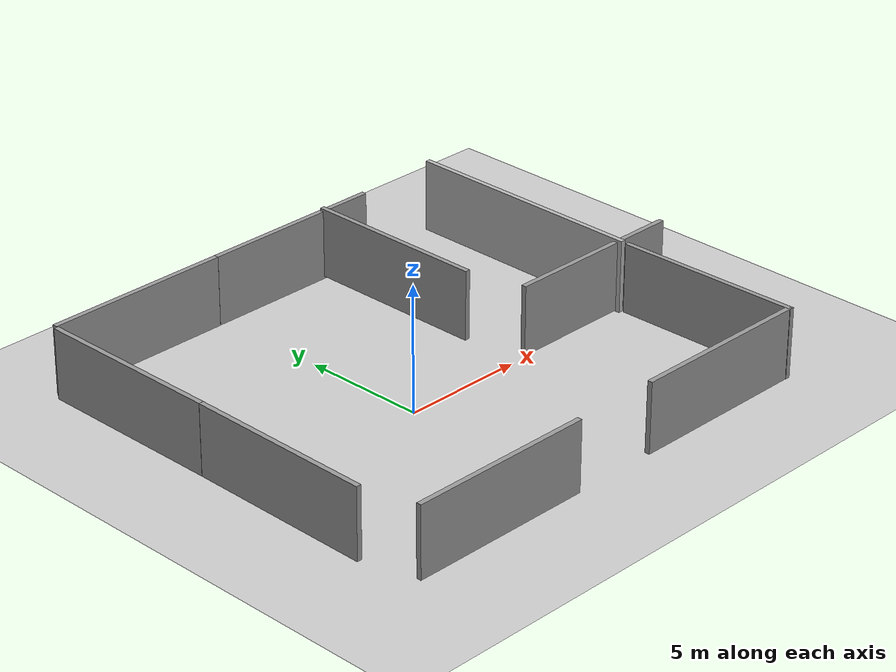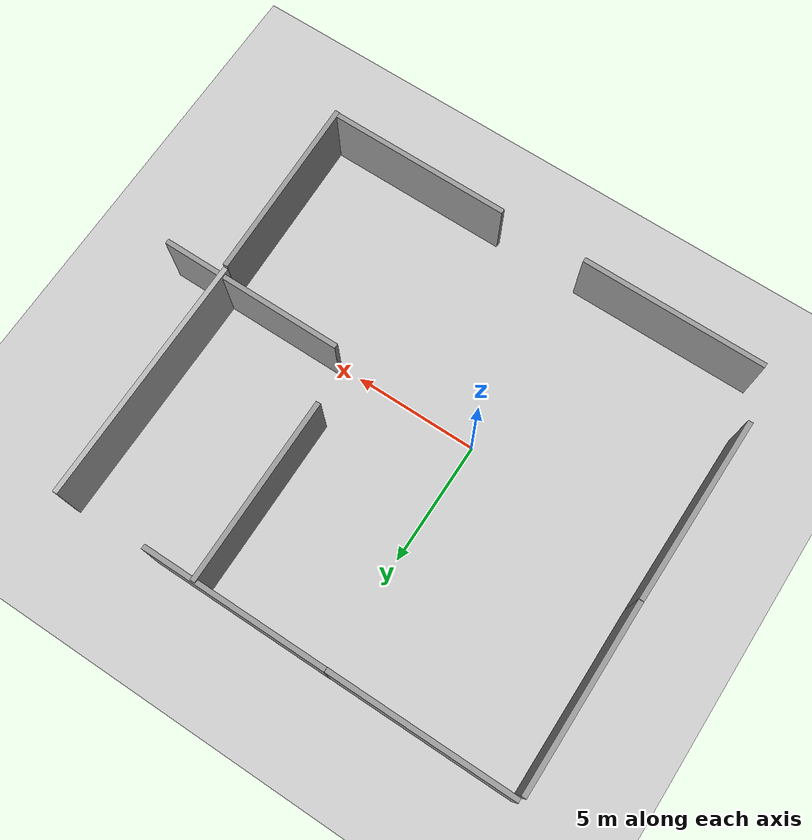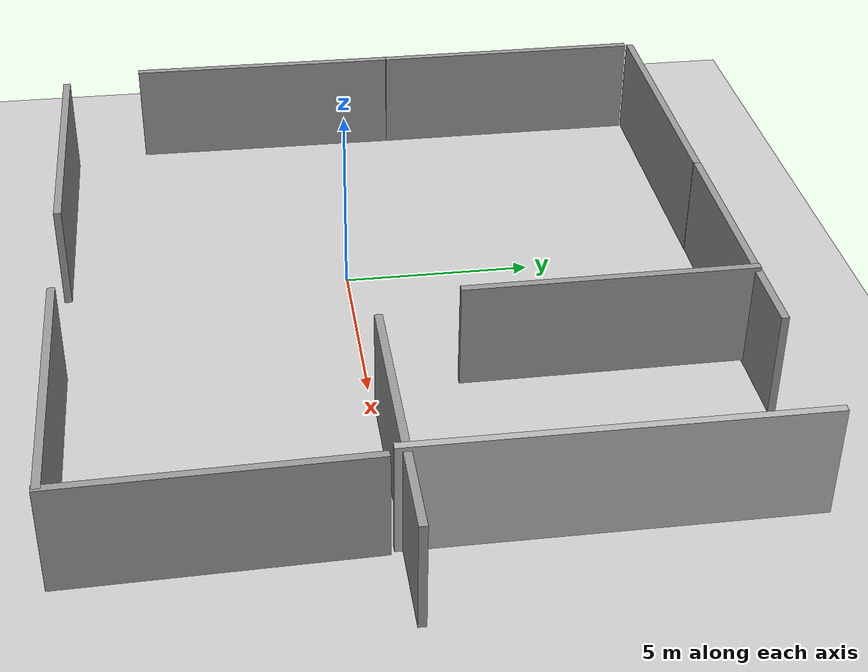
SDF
<sdf version="1.9">
 <world name="empty">
  <physics name="1ms" type="ignored">
   <max_step_size>0.001</max_step_size>
   <real_time_factor>1</real_time_factor>
   <real_time_update_rate>1000</real_time_update_rate>
  </physics>
  <plugin name="gz::sim::systems::Physics" filename="ignition-gazebo-physics-system"/>
  <plugin name="gz::sim::systems::UserCommands" filename="ignition-gazebo-user-commands-system"/>
  <plugin name="gz::sim::systems::SceneBroadcaster" filename="ignition-gazebo-scene-broadcaster-system"/>
  <plugin name="gz::sim::systems::Contact" filename="ignition-gazebo-contact-system"/>
  <gravity>0 0 -9.8</gravity>
  <magnetic_field>6e-06 2.3e-05 -4.2e-05</magnetic_field>
  <atmosphere type="adiabatic"/>
  <scene><ambient>0.4 0.4 0.4 1</ambient><background>0.7 0.7 0.7 1</background><shadows>true</shadows></scene>
  <model name="ground_plane">
   <static>true</static>
   <link name="link">
    <collision name="collision">
     <geometry><plane><normal>0 0 1</normal><size>100 100</size></plane></geometry>
    </collision>
    <visual name="visual">
     <geometry><plane><normal>0 0 1</normal><size>100 100</size></plane></geometry>
     <material>
      <ambient>0.8 0.8 0.8 1</ambient>
      <diffuse>0.8 0.8 0.8 1</diffuse>
      <specular>0.8 0.8 0.8 1</specular>
     </material>
    </visual>
    <inertial>
     <mass>1</mass>
     <inertia><ixx>1</ixx><ixy>0</ixy><ixz>0</ixz><iyy>1</iyy><iyz>0</iyz><izz>1</izz></inertia>
    </inertial>
   </link>
  </model>
  <model name="grey_wall">
   <static>true</static>
   <link name="link">
    <pose>0 0 1.4 0 -0 0</pose>
    <collision name="collision"><geometry><box><size>7.5 0.2 2.8</size></box></geometry></collision>
    <visual name="visual">
     <cast_shadows>false</cast_shadows>
     <geometry><box><size>7.5 0.2 2.8</size></box></geometry>
     <material>
      <script>
       <uri>https://fuel.gazebosim.org/1.0/openrobotics/models/grey wall/3/files/materials/scripts</uri>
       <uri>https://fuel.gazebosim.org/1.0/openrobotics/models/grey wall/3/files/materials/textures</uri>
       <name>vrc/grey_wall</name>
      </script>
     </material>
    </visual>
    <inertial>
     <mass>1</mass>
     <inertia><ixx>1</ixx><ixy>0</ixy><ixz>0</ixz><iyy>1</iyy><iyz>0</iyz><izz>1</izz></inertia>
    </inertial>
   </link>
   <pose>-4.10767 9.71465 0 0 -0 0</pose>
  </model>
  <model name="grey_wall_0">
   <static>true</static>
   <link name="link">
    <pose>0 0 1.4 0 -0 0</pose>
    <collision name="collision"><geometry><box><size>7.5 0.2 2.8</size></box></geometry></collision>
    <visual name="visual">
     <cast_shadows>false</cast_shadows>
     <geometry><box><size>7.5 0.2 2.8</size></box></geometry>
     <material>
      <script>
       <uri>https://fuel.gazebosim.org/1.0/openrobotics/models/grey wall/3/files/materials/scripts</uri>
       <uri>https://fuel.gazebosim.org/1.0/openrobotics/models/grey wall/3/files/materials/textures</uri>
       <name>vrc/grey_wall</name>
      </script>
     </material>
    </visual>
    <inertial>
     <mass>1</mass>
     <inertia><ixx>1</ixx><ixy>0</ixy><ixz>0</ixz><iyy>1</iyy><iyz>0</iyz><izz>1</izz></inertia>
    </inertial>
   </link>
   <pose>-7.89628 5.8149 0 0 0 -1.56751</pose>
  </model>
  <model name="grey_wall_1">
   <static>true</static>
   <link name="link">
    <pose>0 0 1.4 0 -0 0</pose>
    <collision name="collision"><geometry><box><size>7.5 0.2 2.8</size></box></geometry></collision>
    <visual name="visual">
     <cast_shadows>false</cast_shadows>
     <geometry><box><size>7.5 0.2 2.8</size></box></geometry>
     <material>
      <script>
       <uri>https://fuel.gazebosim.org/1.0/openrobotics/models/grey wall/3/files/materials/scripts</uri>
       <uri>https://fuel.gazebosim.org/1.0/openrobotics/models/grey wall/3/files/materials/textures</uri>
       <name>vrc/grey_wall</name>
      </script>
     </material>
    </visual>
    <inertial>
     <mass>1</mass>
     <inertia><ixx>1</ixx><ixy>0</ixy><ixz>0</ixz><iyy>1</iyy><iyz>0</iyz><izz>1</izz></inertia>
    </inertial>
   </link>
   <pose>-3.64886 -7.56421 0 0 -0 0</pose>
  </model>
  <model name="grey_wall_2">
   <static>true</static>
   <link name="link">
    <pose>0 0 1.4 0 -0 0</pose>
    <collision name="collision"><geometry><box><size>7.5 0.2 2.8</size></box></geometry></collision>
    <visual name="visual">
     <cast_shadows>false</cast_shadows>
     <geometry><box><size>7.5 0.2 2.8</size></box></geometry>
     <material>
      <script>
       <uri>https://fuel.gazebosim.org/1.0/openrobotics/models/grey wall/3/files/materials/scripts</uri>
       <uri>https://fuel.gazebosim.org/1.0/openrobotics/models/grey wall/3/files/materials/textures</uri>
       <name>vrc/grey_wall</name>
      </script>
     </material>
    </visual>
    <inertial>
     <mass>1</mass>
     <inertia><ixx>1</ixx><ixy>0</ixy><ixz>0</ixz><iyy>1</iyy><iyz>0</iyz><izz>1</izz></inertia>
    </inertial>
   </link>
   <pose>-7.91399 -1.69678 0 0 0 -1.57813</pose>
  </model>
  <model name="cutout_wall">
   <static>true</static>
   <link name="link">
    <pose>0 0 1.4 0 -0 0</pose>
    <collision name="collision">
     <geometry><box><size>10 0.2 3.8</size></box></geometry>
     <surface>
      <contact>
       <collide_without_contact>true</collide_without_contact>
       <collide_without_contact_bitmask>2</collide_without_contact_bitmask>
      </contact>
     </surface>
    </collision>
    <visual name="visual">
     <cast_shadows>false</cast_shadows>
     <geometry><box><size>10 0.2 3.8</size></box></geometry>
     <material>
      <script>
       <uri>https://fuel.gazebosim.org/1.0/openrobotics/models/cutout wall/2/files/materials/scripts</uri>
       <uri>https://fuel.gazebosim.org/1.0/openrobotics/models/cutout wall/2/files/materials/textures</uri>
       <name>drc_practice/cutout_wall</name>
      </script>
     </material>
    </visual>
    <sensor name="mud_contact" type="contact">
     <always_on>true</always_on>
     <update_rate>1000</update_rate>
     <contact><collision>collision</collision><topic>__default_topic__</topic></contact>
    </sensor>
    <inertial>
     <mass>1</mass>
     <inertia><ixx>1</ixx><ixy>0</ixy><ixz>0</ixz><iyy>1</iyy><iyz>0</iyz><izz>1</izz></inertia>
    </inertial>
   </link>
   <plugin name="gazebo_mud" filename="libMudPlugin.so">
    <contact_sensor_name>link/mud_contact</contact_sensor_name>
    <stiffness>0.0</stiffness>
    <damping>40.0</damping>
    <contact_surface_bitmask>2</contact_surface_bitmask>
    <link_name>drill::link</link_name>
   </plugin>
   <pose>10.7761 4.89564 -0.398176 0 -0 1.57206</pose>
  </model>
  <model name="grey_wall_3">
   <static>true</static>
   <link name="link">
    <pose>0 0 1.4 0 -0 0</pose>
    <collision name="collision"><geometry><box><size>7.5 0.2 2.8</size></box></geometry></collision>
    <visual name="visual">
     <cast_shadows>false</cast_shadows>
     <geometry><box><size>7.5 0.2 2.8</size></box></geometry>
     <material>
      <script>
       <uri>https://fuel.gazebosim.org/1.0/openrobotics/models/grey wall/3/files/materials/scripts</uri>
       <uri>https://fuel.gazebosim.org/1.0/openrobotics/models/grey wall/3/files/materials/textures</uri>
       <name>vrc/grey_wall</name>
      </script>
     </material>
    </visual>
    <inertial>
     <mass>1</mass>
     <inertia><ixx>1</ixx><ixy>0</ixy><ixz>0</ixz><iyy>1</iyy><iyz>0</iyz><izz>1</izz></inertia>
    </inertial>
   </link>
   <pose>9.50297 0.177699 0 0 -0 0</pose>
  </model>
  <model name="grey_wall_4">
   <static>true</static>
   <link name="link">
    <pose>0 0 1.4 0 -0 0</pose>
    <collision name="collision"><geometry><box><size>7.5 0.2 2.8</size></box></geometry></collision>
    <visual name="visual">
     <cast_shadows>false</cast_shadows>
     <geometry><box><size>7.5 0.2 2.8</size></box></geometry>
     <material>
      <script>
       <uri>https://fuel.gazebosim.org/1.0/openrobotics/models/grey wall/3/files/materials/scripts</uri>
       <uri>https://fuel.gazebosim.org/1.0/openrobotics/models/grey wall/3/files/materials/textures</uri>
       <name>vrc/grey_wall</name>
      </script>
     </material>
    </visual>
    <inertial>
     <mass>1</mass>
     <inertia><ixx>1</ixx><ixy>0</ixy><ixz>0</ixz><iyy>1</iyy><iyz>0</iyz><izz>1</izz></inertia>
    </inertial>
   </link>
   <pose>3.39925 9.72029 0 0 -0 0</pose>
  </model>
  <model name="grey_wall_5">
   <static>true</static>
   <link name="link">
    <pose>0 0 1.4 0 -0 0</pose>
    <collision name="collision"><geometry><box><size>7.5 0.2 2.8</size></box></geometry></collision>
    <visual name="visual">
     <cast_shadows>false</cast_shadows>
     <geometry><box><size>7.5 0.2 2.8</size></box></geometry>
     <material>
      <script>
       <uri>https://fuel.gazebosim.org/1.0/openrobotics/models/grey wall/3/files/materials/scripts</uri>
       <uri>https://fuel.gazebosim.org/1.0/openrobotics/models/grey wall/3/files/materials/textures</uri>
       <name>vrc/grey_wall</name>
      </script>
     </material>
    </visual>
    <inertial>
     <mass>1</mass>
     <inertia><ixx>1</ixx><ixy>0</ixy><ixz>0</ixz><iyy>1</iyy><iyz>0</iyz><izz>1</izz></inertia>
    </inertial>
   </link>
   <pose>5.03757 6.02521 0.10665 0 0 -1.56522</pose>
  </model>
  <model name="grey_wall_6">
   <static>true</static>
   <link name="link">
    <pose>0 0 1.4 0 -0 0</pose>
    <collision name="collision"><geometry><box><size>7.5 0.2 2.8</size></box></geometry></collision>
    <visual name="visual">
     <cast_shadows>false</cast_shadows>
     <geometry><box><size>7.5 0.2 2.8</size></box></geometry>
     <material>
      <script>
       <uri>https://fuel.gazebosim.org/1.0/openrobotics/models/grey wall/3/files/materials/scripts</uri>
       <uri>https://fuel.gazebosim.org/1.0/openrobotics/models/grey wall/3/files/materials/textures</uri>
       <name>vrc/grey_wall</name>
      </script>
     </material>
    </visual>
    <inertial>
     <mass>1</mass>
     <inertia><ixx>1</ixx><ixy>0</ixy><ixz>0</ixz><iyy>1</iyy><iyz>0</iyz><izz>1</izz></inertia>
    </inertial>
   </link>
   <pose>7.3439 -7.5772 0 0 -0 0</pose>
  </model>
  <model name="grey_wall_7">
   <static>true</static>
   <link name="link">
    <pose>0 0 1.4 0 -0 0</pose>
    <collision name="collision"><geometry><box><size>7.5 0.2 2.8</size></box></geometry></collision>
    <visual name="visual">
     <cast_shadows>false</cast_shadows>
     <geometry><box><size>7.5 0.2 2.8</size></box></geometry>
     <material>
      <script>
       <uri>https://fuel.gazebosim.org/1.0/openrobotics/models/grey wall/3/files/materials/scripts</uri>
       <uri>https://fuel.gazebosim.org/1.0/openrobotics/models/grey wall/3/files/materials/textures</uri>
       <name>vrc/grey_wall</name>
      </script>
     </material>
    </visual>
    <inertial>
     <mass>1</mass>
     <inertia><ixx>1</ixx><ixy>0</ixy><ixz>0</ixz><iyy>1</iyy><iyz>0</iyz><izz>1</izz></inertia>
    </inertial>
   </link>
   <pose>10.9858 -3.94391 0 0 -0 1.59353</pose>
  </model>
  <light name="sun" type="directional">
   <pose>0 0 10 0 -0 0</pose>
   <intensity>1</intensity>
   <direction>-0.5 0.1 -0.9</direction>
   <diffuse>0.8 0.8 0.8 1</diffuse>
   <specular>0.2 0.2 0.2 1</specular>
   <attenuation>
    <range>1000</range>
    <linear>0.01</linear>
    <constant>0.90000000000000002</constant>
    <quadratic>0.001</quadratic>
   </attenuation>
   <spot><inner_angle>0</inner_angle><outer_angle>0</outer_angle><falloff>0</falloff></spot>
  </light>
 </world>
</sdf>
